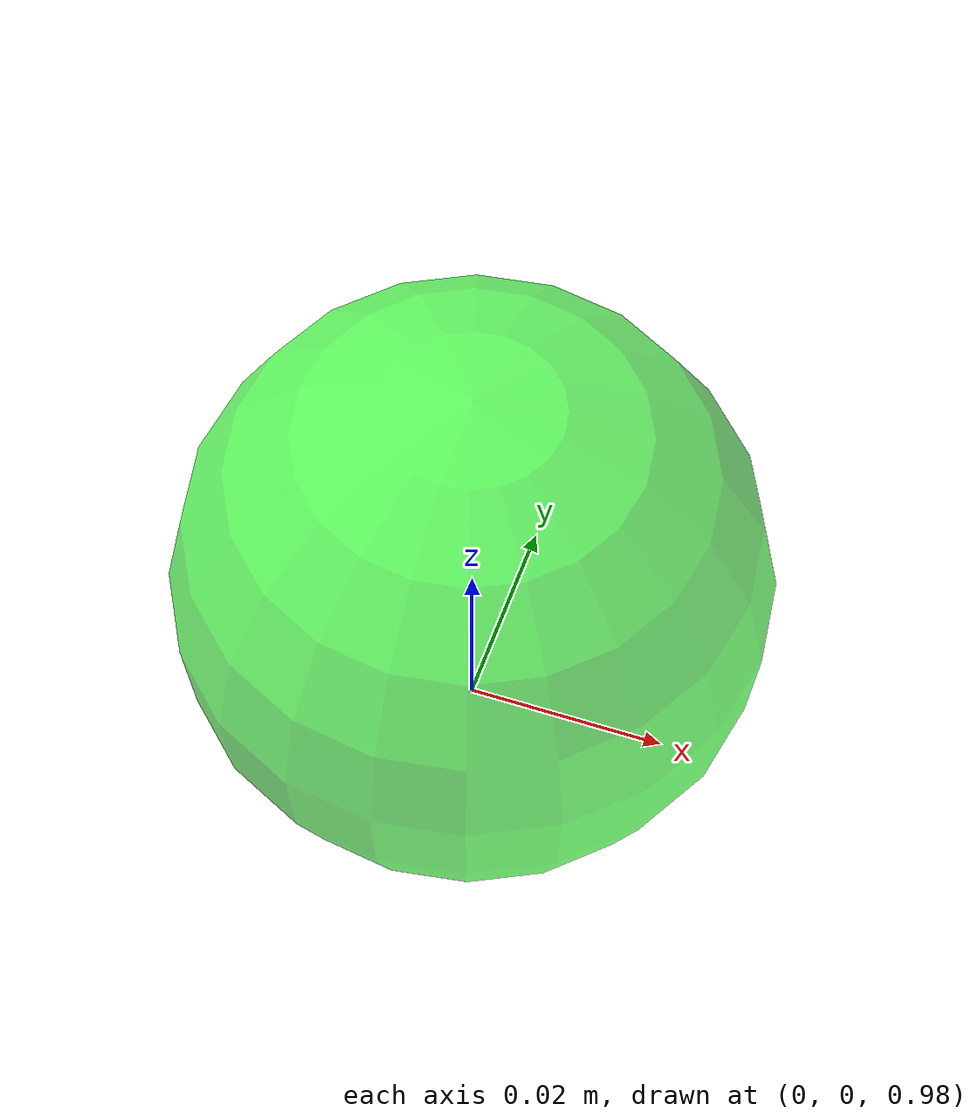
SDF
<?xml version="1.0" ?>
<sdf version="1.5">
  <model name="startSphere">
    <static>true</static>
    <link name="link">

      <visual name="visual">
        <pose>0.0 0.0 1.0 0 0 0</pose>
        <geometry>
          <sphere>
              <radius>0.03</radius>
          </sphere>
        </geometry>

        <material>
            <ambient>   0.0 1.0 0.0 0.6 </ambient>
            <diffuse>   0.0 1.0 0.0 0.6 </diffuse>
        </material>

        <transparency>0.2</transparency>

      </visual>

    </link>
    <plugin name="model_push" filename="model_push/libmodel_push.so"/>

  </model>
</sdf>
